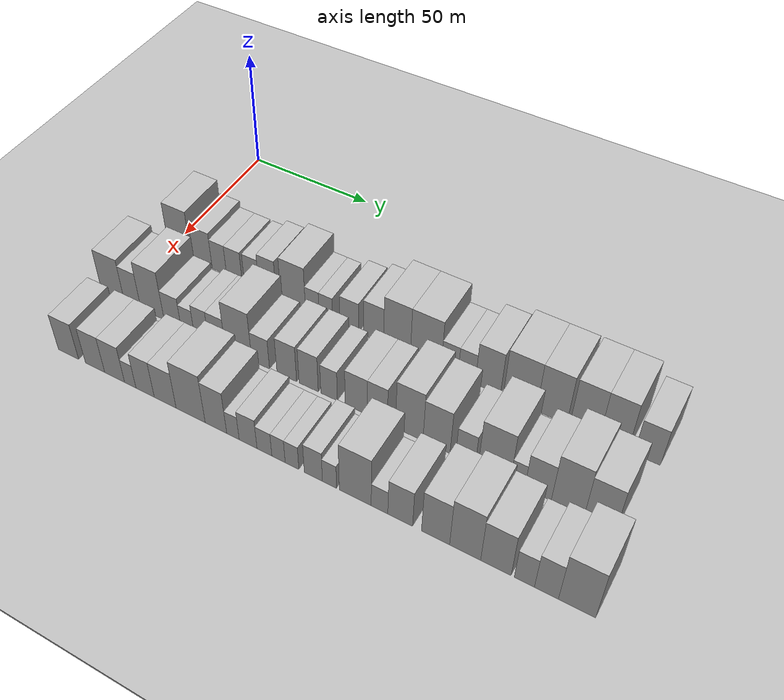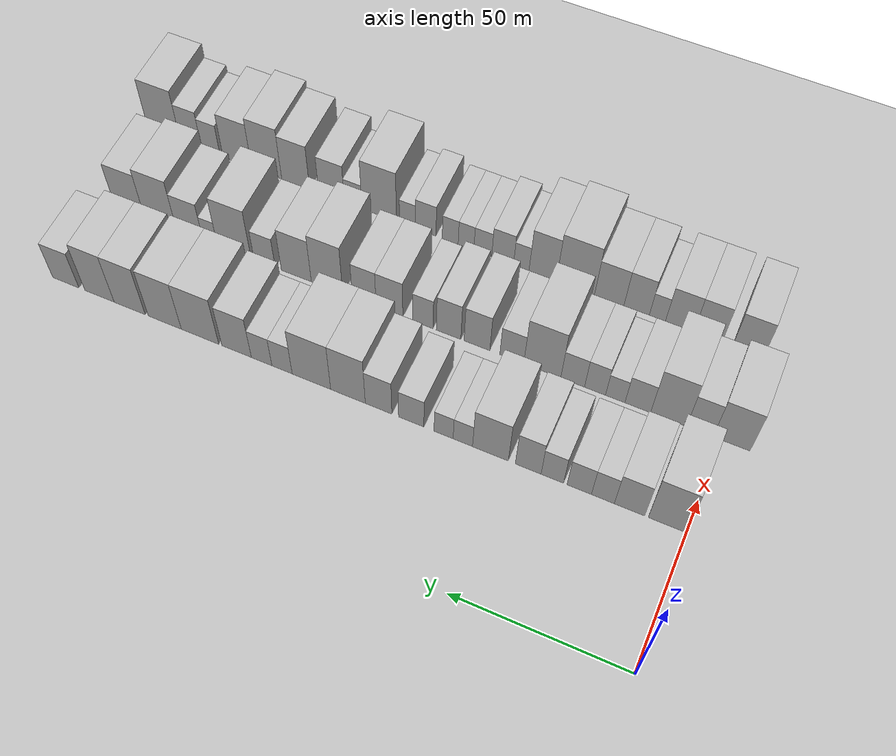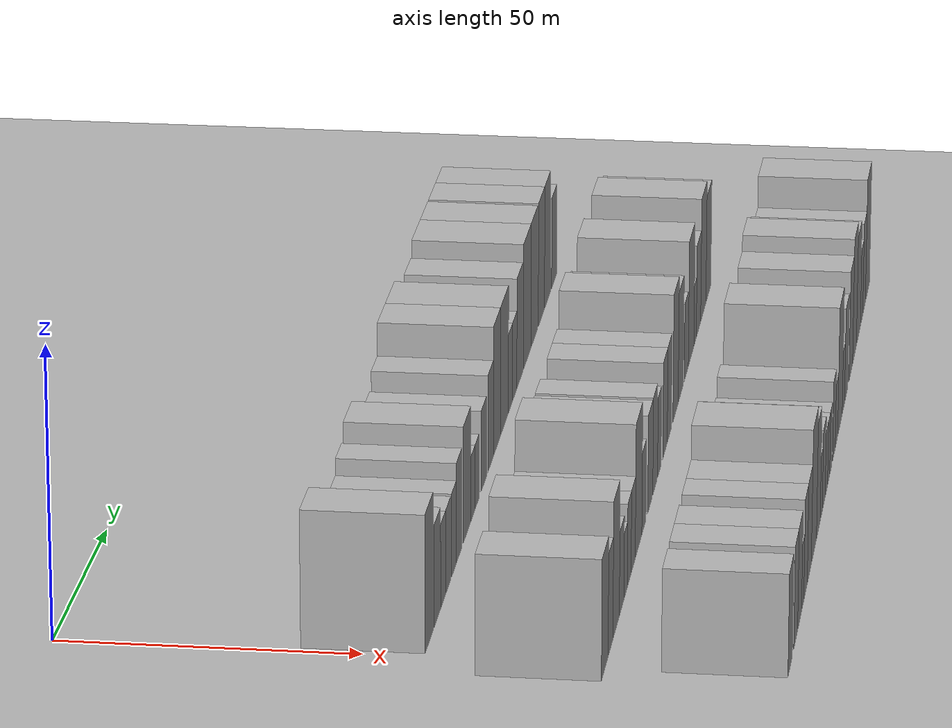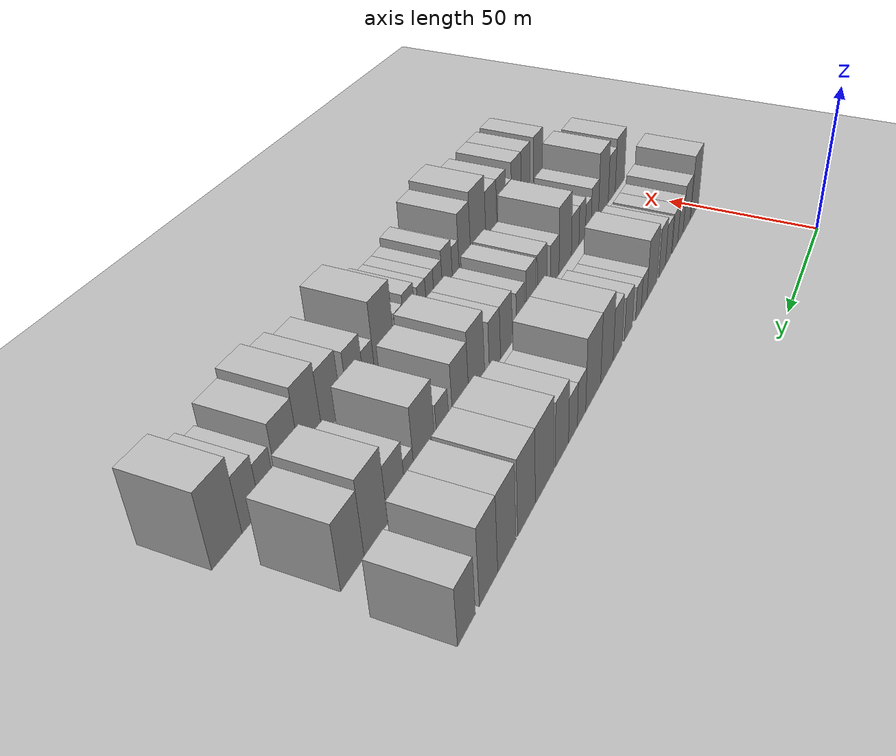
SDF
<sdf version="1.6">
 <world name="default">
  <include><name>ground_plane_1</name><uri>model://HANNAS_ground_plane</uri></include>
  <include>
   <name>ground_plane_2</name>
   <uri>model://HANNAS_ground_plane</uri>
   <pose>100 0 0  0 0 0</pose>
  </include>
  <model name="building_56">
   <static>1</static>
   <pose>50.0000 5.3377 0 0.000000 0.000000 0.000000</pose>
   <link name="link">
    <pose>0 0 12.00 0 0 0</pose>
    <collision name="collision"><geometry><box><size>20.0000 10.2984 24.0000</size></box></geometry></collision>
    <visual name="visual">
     <cast_shadows>0</cast_shadows>
     <geometry><box><size>20.0000 10.2984 24.0000</size></box></geometry>
     <material>
      <script>
       <uri>model://HANNAS_wall/materials/scripts</uri>
       <uri>model://HANNAS_wall/materials/textures</uri>
       <name>vrc/HANNAS_wall</name>
      </script>
     </material>
    </visual>
   </link>
  </model>
  <model name="building_57">
   <static>1</static>
   <pose>50.0000 15.6601 0 0.000000 0.000000 0.000000</pose>
   <link name="link">
    <pose>0 0 9.00 0 0 0</pose>
    <collision name="collision"><geometry><box><size>20.0000 8.3464 18.0000</size></box></geometry></collision>
    <visual name="visual">
     <cast_shadows>0</cast_shadows>
     <geometry><box><size>20.0000 8.3464 18.0000</size></box></geometry>
     <material>
      <script>
       <uri>model://HANNAS_wall/materials/scripts</uri>
       <uri>model://HANNAS_wall/materials/textures</uri>
       <name>vrc/HANNAS_wall</name>
      </script>
     </material>
    </visual>
   </link>
  </model>
  <model name="building_58">
   <static>1</static>
   <pose>50.0000 23.0112 0 0.000000 0.000000 0.000000</pose>
   <link name="link">
    <pose>0 0 7.50 0 0 0</pose>
    <collision name="collision"><geometry><box><size>20.0000 6.3558 15.0000</size></box></geometry></collision>
    <visual name="visual">
     <cast_shadows>0</cast_shadows>
     <geometry><box><size>20.0000 6.3558 15.0000</size></box></geometry>
     <material>
      <script>
       <uri>model://HANNAS_wall/materials/scripts</uri>
       <uri>model://HANNAS_wall/materials/textures</uri>
       <name>vrc/HANNAS_wall</name>
      </script>
     </material>
    </visual>
   </link>
  </model>
  <model name="building_59">
   <static>1</static>
   <pose>50.0000 29.6008 0 0.000000 0.000000 0.000000</pose>
   <link name="link">
    <pose>0 0 7.50 0 0 0</pose>
    <collision name="collision"><geometry><box><size>20.0000 6.8233 15.0000</size></box></geometry></collision>
    <visual name="visual">
     <cast_shadows>0</cast_shadows>
     <geometry><box><size>20.0000 6.8233 15.0000</size></box></geometry>
     <material>
      <script>
       <uri>model://HANNAS_wall/materials/scripts</uri>
       <uri>model://HANNAS_wall/materials/textures</uri>
       <name>vrc/HANNAS_wall</name>
      </script>
     </material>
    </visual>
   </link>
  </model>
  <model name="building_60">
   <static>1</static>
   <pose>50.0000 37.1964 0 0.000000 0.000000 0.000000</pose>
   <link name="link">
    <pose>0 0 7.50 0 0 0</pose>
    <collision name="collision"><geometry><box><size>20.0000 6.3681 15.0000</size></box></geometry></collision>
    <visual name="visual">
     <cast_shadows>0</cast_shadows>
     <geometry><box><size>20.0000 6.3681 15.0000</size></box></geometry>
     <material>
      <script>
       <uri>model://HANNAS_wall/materials/scripts</uri>
       <uri>model://HANNAS_wall/materials/textures</uri>
       <name>vrc/HANNAS_wall</name>
      </script>
     </material>
    </visual>
   </link>
  </model>
  <model name="building_61">
   <static>1</static>
   <pose>50.0000 44.0449 0 0.000000 0.000000 0.000000</pose>
   <link name="link">
    <pose>0 0 9.00 0 0 0</pose>
    <collision name="collision"><geometry><box><size>20.0000 7.3289 18.0000</size></box></geometry></collision>
    <visual name="visual">
     <cast_shadows>0</cast_shadows>
     <geometry><box><size>20.0000 7.3289 18.0000</size></box></geometry>
     <material>
      <script>
       <uri>model://HANNAS_wall/materials/scripts</uri>
       <uri>model://HANNAS_wall/materials/textures</uri>
       <name>vrc/HANNAS_wall</name>
      </script>
     </material>
    </visual>
   </link>
  </model>
  <model name="building_62">
   <static>1</static>
   <pose>50.0000 54.8682 0 0.000000 0.000000 0.000000</pose>
   <link name="link">
    <pose>0 0 10.50 0 0 0</pose>
    <collision name="collision"><geometry><box><size>20.0000 10.3177 21.0000</size></box></geometry></collision>
    <visual name="visual">
     <cast_shadows>0</cast_shadows>
     <geometry><box><size>20.0000 10.3177 21.0000</size></box></geometry>
     <material>
      <script>
       <uri>model://HANNAS_wall/materials/scripts</uri>
       <uri>model://HANNAS_wall/materials/textures</uri>
       <name>vrc/HANNAS_wall</name>
      </script>
     </material>
    </visual>
   </link>
  </model>
  <model name="building_63">
   <static>1</static>
   <pose>50.0000 62.8464 0 0.000000 0.000000 0.000000</pose>
   <link name="link">
    <pose>0 0 6.00 0 0 0</pose>
    <collision name="collision"><geometry><box><size>20.0000 5.6387 12.0000</size></box></geometry></collision>
    <visual name="visual">
     <cast_shadows>0</cast_shadows>
     <geometry><box><size>20.0000 5.6387 12.0000</size></box></geometry>
     <material>
      <script>
       <uri>model://HANNAS_wall/materials/scripts</uri>
       <uri>model://HANNAS_wall/materials/textures</uri>
       <name>vrc/HANNAS_wall</name>
      </script>
     </material>
    </visual>
   </link>
  </model>
  <model name="building_64">
   <static>1</static>
   <pose>50.0000 68.4595 0 0.000000 0.000000 0.000000</pose>
   <link name="link">
    <pose>0 0 6.00 0 0 0</pose>
    <collision name="collision"><geometry><box><size>20.0000 5.5874 12.0000</size></box></geometry></collision>
    <visual name="visual">
     <cast_shadows>0</cast_shadows>
     <geometry><box><size>20.0000 5.5874 12.0000</size></box></geometry>
     <material>
      <script>
       <uri>model://HANNAS_wall/materials/scripts</uri>
       <uri>model://HANNAS_wall/materials/textures</uri>
       <name>vrc/HANNAS_wall</name>
      </script>
     </material>
    </visual>
   </link>
  </model>
  <model name="building_65">
   <static>1</static>
   <pose>50.0000 77.9872 0 0.000000 0.000000 0.000000</pose>
   <link name="link">
    <pose>0 0 7.50 0 0 0</pose>
    <collision name="collision"><geometry><box><size>20.0000 7.4680 15.0000</size></box></geometry></collision>
    <visual name="visual">
     <cast_shadows>0</cast_shadows>
     <geometry><box><size>20.0000 7.4680 15.0000</size></box></geometry>
     <material>
      <script>
       <uri>model://HANNAS_wall/materials/scripts</uri>
       <uri>model://HANNAS_wall/materials/textures</uri>
       <name>vrc/HANNAS_wall</name>
      </script>
     </material>
    </visual>
   </link>
  </model>
  <model name="building_66">
   <static>1</static>
   <pose>50.0000 87.6970 0 0.000000 0.000000 0.000000</pose>
   <link name="link">
    <pose>0 0 9.00 0 0 0</pose>
    <collision name="collision"><geometry><box><size>20.0000 7.9515 18.0000</size></box></geometry></collision>
    <visual name="visual">
     <cast_shadows>0</cast_shadows>
     <geometry><box><size>20.0000 7.9515 18.0000</size></box></geometry>
     <material>
      <script>
       <uri>model://HANNAS_wall/materials/scripts</uri>
       <uri>model://HANNAS_wall/materials/textures</uri>
       <name>vrc/HANNAS_wall</name>
      </script>
     </material>
    </visual>
   </link>
  </model>
  <model name="building_67">
   <static>1</static>
   <pose>50.0000 96.9060 0 0.000000 0.000000 0.000000</pose>
   <link name="link">
    <pose>0 0 12.00 0 0 0</pose>
    <collision name="collision"><geometry><box><size>20.0000 10.4666 24.0000</size></box></geometry></collision>
    <visual name="visual">
     <cast_shadows>0</cast_shadows>
     <geometry><box><size>20.0000 10.4666 24.0000</size></box></geometry>
     <material>
      <script>
       <uri>model://HANNAS_wall/materials/scripts</uri>
       <uri>model://HANNAS_wall/materials/textures</uri>
       <name>vrc/HANNAS_wall</name>
      </script>
     </material>
    </visual>
   </link>
  </model>
  <model name="building_68">
   <static>1</static>
   <pose>50.0000 108.0340 0 0.000000 0.000000 0.000000</pose>
   <link name="link">
    <pose>0 0 12.00 0 0 0</pose>
    <collision name="collision"><geometry><box><size>20.0000 11.7893 24.0000</size></box></geometry></collision>
    <visual name="visual">
     <cast_shadows>0</cast_shadows>
     <geometry><box><size>20.0000 11.7893 24.0000</size></box></geometry>
     <material>
      <script>
       <uri>model://HANNAS_wall/materials/scripts</uri>
       <uri>model://HANNAS_wall/materials/textures</uri>
       <name>vrc/HANNAS_wall</name>
      </script>
     </material>
    </visual>
   </link>
  </model>
  <model name="building_69">
   <static>1</static>
   <pose>50.0000 117.0677 0 0.000000 0.000000 0.000000</pose>
   <link name="link">
    <pose>0 0 7.50 0 0 0</pose>
    <collision name="collision"><geometry><box><size>20.0000 6.2782 15.0000</size></box></geometry></collision>
    <visual name="visual">
     <cast_shadows>0</cast_shadows>
     <geometry><box><size>20.0000 6.2782 15.0000</size></box></geometry>
     <material>
      <script>
       <uri>model://HANNAS_wall/materials/scripts</uri>
       <uri>model://HANNAS_wall/materials/textures</uri>
       <name>vrc/HANNAS_wall</name>
      </script>
     </material>
    </visual>
   </link>
  </model>
  <model name="building_70">
   <static>1</static>
   <pose>50.0000 123.4036 0 0.000000 0.000000 0.000000</pose>
   <link name="link">
    <pose>0 0 7.50 0 0 0</pose>
    <collision name="collision"><geometry><box><size>20.0000 6.3938 15.0000</size></box></geometry></collision>
    <visual name="visual">
     <cast_shadows>0</cast_shadows>
     <geometry><box><size>20.0000 6.3938 15.0000</size></box></geometry>
     <material>
      <script>
       <uri>model://HANNAS_wall/materials/scripts</uri>
       <uri>model://HANNAS_wall/materials/textures</uri>
       <name>vrc/HANNAS_wall</name>
      </script>
     </material>
    </visual>
   </link>
  </model>
  <model name="building_71">
   <static>1</static>
   <pose>50.0000 131.2240 0 0.000000 0.000000 0.000000</pose>
   <link name="link">
    <pose>0 0 10.50 0 0 0</pose>
    <collision name="collision"><geometry><box><size>20.0000 9.2470 21.0000</size></box></geometry></collision>
    <visual name="visual">
     <cast_shadows>0</cast_shadows>
     <geometry><box><size>20.0000 9.2470 21.0000</size></box></geometry>
     <material>
      <script>
       <uri>model://HANNAS_wall/materials/scripts</uri>
       <uri>model://HANNAS_wall/materials/textures</uri>
       <name>vrc/HANNAS_wall</name>
      </script>
     </material>
    </visual>
   </link>
  </model>
  <model name="building_72">
   <static>1</static>
   <pose>50.0000 142.8083 0 0.000000 0.000000 0.000000</pose>
   <link name="link">
    <pose>0 0 12.00 0 0 0</pose>
    <collision name="collision"><geometry><box><size>20.0000 11.9215 24.0000</size></box></geometry></collision>
    <visual name="visual">
     <cast_shadows>0</cast_shadows>
     <geometry><box><size>20.0000 11.9215 24.0000</size></box></geometry>
     <material>
      <script>
       <uri>model://HANNAS_wall/materials/scripts</uri>
       <uri>model://HANNAS_wall/materials/textures</uri>
       <name>vrc/HANNAS_wall</name>
      </script>
     </material>
    </visual>
   </link>
  </model>
  <model name="building_73">
   <static>1</static>
   <pose>50.0000 154.0795 0 0.000000 0.000000 0.000000</pose>
   <link name="link">
    <pose>0 0 12.00 0 0 0</pose>
    <collision name="collision"><geometry><box><size>20.0000 10.6209 24.0000</size></box></geometry></collision>
    <visual name="visual">
     <cast_shadows>0</cast_shadows>
     <geometry><box><size>20.0000 10.6209 24.0000</size></box></geometry>
     <material>
      <script>
       <uri>model://HANNAS_wall/materials/scripts</uri>
       <uri>model://HANNAS_wall/materials/textures</uri>
       <name>vrc/HANNAS_wall</name>
      </script>
     </material>
    </visual>
   </link>
  </model>
  <model name="building_74">
   <static>1</static>
   <pose>50.0000 165.4645 0 0.000000 0.000000 0.000000</pose>
   <link name="link">
    <pose>0 0 12.00 0 0 0</pose>
    <collision name="collision"><geometry><box><size>20.0000 10.1491 24.0000</size></box></geometry></collision>
    <visual name="visual">
     <cast_shadows>0</cast_shadows>
     <geometry><box><size>20.0000 10.1491 24.0000</size></box></geometry>
     <material>
      <script>
       <uri>model://HANNAS_wall/materials/scripts</uri>
       <uri>model://HANNAS_wall/materials/textures</uri>
       <name>vrc/HANNAS_wall</name>
      </script>
     </material>
    </visual>
   </link>
  </model>
  <model name="building_75">
   <static>1</static>
   <pose>50.0000 175.3621 0 0.000000 0.000000 0.000000</pose>
   <link name="link">
    <pose>0 0 12.00 0 0 0</pose>
    <collision name="collision"><geometry><box><size>20.0000 9.6459 24.0000</size></box></geometry></collision>
    <visual name="visual">
     <cast_shadows>0</cast_shadows>
     <geometry><box><size>20.0000 9.6459 24.0000</size></box></geometry>
     <material>
      <script>
       <uri>model://HANNAS_wall/materials/scripts</uri>
       <uri>model://HANNAS_wall/materials/textures</uri>
       <name>vrc/HANNAS_wall</name>
      </script>
     </material>
    </visual>
   </link>
  </model>
  <model name="building_76">
   <static>1</static>
   <pose>50.0000 186.5350 0 0.000000 0.000000 0.000000</pose>
   <link name="link">
    <pose>0 0 9.00 0 0 0</pose>
    <collision name="collision"><geometry><box><size>20.0000 8.7000 18.0000</size></box></geometry></collision>
    <visual name="visual">
     <cast_shadows>0</cast_shadows>
     <geometry><box><size>20.0000 8.7000 18.0000</size></box></geometry>
     <material>
      <script>
       <uri>model://HANNAS_wall/materials/scripts</uri>
       <uri>model://HANNAS_wall/materials/textures</uri>
       <name>vrc/HANNAS_wall</name>
      </script>
     </material>
    </visual>
   </link>
  </model>
  <model name="building_164">
   <static>1</static>
   <pose>79.0000 -2.9536 0 0.000000 0.000000 0.000000</pose>
   <link name="link">
    <pose>0 0 10.50 0 0 0</pose>
    <collision name="collision"><geometry><box><size>20.0000 10.2951 21.0000</size></box></geometry></collision>
    <visual name="visual">
     <cast_shadows>0</cast_shadows>
     <geometry><box><size>20.0000 10.2951 21.0000</size></box></geometry>
     <material>
      <script>
       <uri>model://HANNAS_wall/materials/scripts</uri>
       <uri>model://HANNAS_wall/materials/textures</uri>
       <name>vrc/HANNAS_wall</name>
      </script>
     </material>
    </visual>
   </link>
  </model>
  <model name="building_165">
   <static>1</static>
   <pose>79.0000 5.9318 0 0.000000 0.000000 0.000000</pose>
   <link name="link">
    <pose>0 0 9.00 0 0 0</pose>
    <collision name="collision"><geometry><box><size>20.0000 7.4758 18.0000</size></box></geometry></collision>
    <visual name="visual">
     <cast_shadows>0</cast_shadows>
     <geometry><box><size>20.0000 7.4758 18.0000</size></box></geometry>
     <material>
      <script>
       <uri>model://HANNAS_wall/materials/scripts</uri>
       <uri>model://HANNAS_wall/materials/textures</uri>
       <name>vrc/HANNAS_wall</name>
      </script>
     </material>
    </visual>
   </link>
  </model>
  <model name="building_166">
   <static>1</static>
   <pose>79.0000 14.7659 0 0.000000 0.000000 0.000000</pose>
   <link name="link">
    <pose>0 0 12.00 0 0 0</pose>
    <collision name="collision"><geometry><box><size>20.0000 10.1925 24.0000</size></box></geometry></collision>
    <visual name="visual">
     <cast_shadows>0</cast_shadows>
     <geometry><box><size>20.0000 10.1925 24.0000</size></box></geometry>
     <material>
      <script>
       <uri>model://HANNAS_wall/materials/scripts</uri>
       <uri>model://HANNAS_wall/materials/textures</uri>
       <name>vrc/HANNAS_wall</name>
      </script>
     </material>
    </visual>
   </link>
  </model>
  <model name="building_167">
   <static>1</static>
   <pose>79.0000 23.5472 0 0.000000 0.000000 0.000000</pose>
   <link name="link">
    <pose>0 0 7.50 0 0 0</pose>
    <collision name="collision"><geometry><box><size>20.0000 7.3701 15.0000</size></box></geometry></collision>
    <visual name="visual">
     <cast_shadows>0</cast_shadows>
     <geometry><box><size>20.0000 7.3701 15.0000</size></box></geometry>
     <material>
      <script>
       <uri>model://HANNAS_wall/materials/scripts</uri>
       <uri>model://HANNAS_wall/materials/textures</uri>
       <name>vrc/HANNAS_wall</name>
      </script>
     </material>
    </visual>
   </link>
  </model>
  <model name="building_168">
   <static>1</static>
   <pose>79.0000 30.0317 0 0.000000 0.000000 0.000000</pose>
   <link name="link">
    <pose>0 0 6.00 0 0 0</pose>
    <collision name="collision"><geometry><box><size>20.0000 5.5988 12.0000</size></box></geometry></collision>
    <visual name="visual">
     <cast_shadows>0</cast_shadows>
     <geometry><box><size>20.0000 5.5988 12.0000</size></box></geometry>
     <material>
      <script>
       <uri>model://HANNAS_wall/materials/scripts</uri>
       <uri>model://HANNAS_wall/materials/textures</uri>
       <name>vrc/HANNAS_wall</name>
      </script>
     </material>
    </visual>
   </link>
  </model>
  <model name="building_169">
   <static>1</static>
   <pose>79.0000 35.8856 0 0.000000 0.000000 0.000000</pose>
   <link name="link">
    <pose>0 0 7.50 0 0 0</pose>
    <collision name="collision"><geometry><box><size>20.0000 6.1090 15.0000</size></box></geometry></collision>
    <visual name="visual">
     <cast_shadows>0</cast_shadows>
     <geometry><box><size>20.0000 6.1090 15.0000</size></box></geometry>
     <material>
      <script>
       <uri>model://HANNAS_wall/materials/scripts</uri>
       <uri>model://HANNAS_wall/materials/textures</uri>
       <name>vrc/HANNAS_wall</name>
      </script>
     </material>
    </visual>
   </link>
  </model>
  <model name="building_170">
   <static>1</static>
   <pose>79.0000 42.4208 0 0.000000 0.000000 0.000000</pose>
   <link name="link">
    <pose>0 0 7.50 0 0 0</pose>
    <collision name="collision"><geometry><box><size>20.0000 6.9614 15.0000</size></box></geometry></collision>
    <visual name="visual">
     <cast_shadows>0</cast_shadows>
     <geometry><box><size>20.0000 6.9614 15.0000</size></box></geometry>
     <material>
      <script>
       <uri>model://HANNAS_wall/materials/scripts</uri>
       <uri>model://HANNAS_wall/materials/textures</uri>
       <name>vrc/HANNAS_wall</name>
      </script>
     </material>
    </visual>
   </link>
  </model>
  <model name="building_171">
   <static>1</static>
   <pose>79.0000 51.3883 0 0.000000 0.000000 0.000000</pose>
   <link name="link">
    <pose>0 0 12.00 0 0 0</pose>
    <collision name="collision"><geometry><box><size>20.0000 10.9735 24.0000</size></box></geometry></collision>
    <visual name="visual">
     <cast_shadows>0</cast_shadows>
     <geometry><box><size>20.0000 10.9735 24.0000</size></box></geometry>
     <material>
      <script>
       <uri>model://HANNAS_wall/materials/scripts</uri>
       <uri>model://HANNAS_wall/materials/textures</uri>
       <name>vrc/HANNAS_wall</name>
      </script>
     </material>
    </visual>
   </link>
  </model>
  <model name="building_172">
   <static>1</static>
   <pose>79.0000 60.4503 0 0.000000 0.000000 0.000000</pose>
   <link name="link">
    <pose>0 0 7.50 0 0 0</pose>
    <collision name="collision"><geometry><box><size>20.0000 7.1504 15.0000</size></box></geometry></collision>
    <visual name="visual">
     <cast_shadows>0</cast_shadows>
     <geometry><box><size>20.0000 7.1504 15.0000</size></box></geometry>
     <material>
      <script>
       <uri>model://HANNAS_wall/materials/scripts</uri>
       <uri>model://HANNAS_wall/materials/textures</uri>
       <name>vrc/HANNAS_wall</name>
      </script>
     </material>
    </visual>
   </link>
  </model>
  <model name="building_173">
   <static>1</static>
   <pose>79.0000 70.9192 0 0.000000 0.000000 0.000000</pose>
   <link name="link">
    <pose>0 0 9.00 0 0 0</pose>
    <collision name="collision"><geometry><box><size>20.0000 7.7874 18.0000</size></box></geometry></collision>
    <visual name="visual">
     <cast_shadows>0</cast_shadows>
     <geometry><box><size>20.0000 7.7874 18.0000</size></box></geometry>
     <material>
      <script>
       <uri>model://HANNAS_wall/materials/scripts</uri>
       <uri>model://HANNAS_wall/materials/textures</uri>
       <name>vrc/HANNAS_wall</name>
      </script>
     </material>
    </visual>
   </link>
  </model>
  <model name="building_174">
   <static>1</static>
   <pose>79.0000 79.5469 0 0.000000 0.000000 0.000000</pose>
   <link name="link">
    <pose>0 0 9.00 0 0 0</pose>
    <collision name="collision"><geometry><box><size>20.0000 7.4681 18.0000</size></box></geometry></collision>
    <visual name="visual">
     <cast_shadows>0</cast_shadows>
     <geometry><box><size>20.0000 7.4681 18.0000</size></box></geometry>
     <material>
      <script>
       <uri>model://HANNAS_wall/materials/scripts</uri>
       <uri>model://HANNAS_wall/materials/textures</uri>
       <name>vrc/HANNAS_wall</name>
      </script>
     </material>
    </visual>
   </link>
  </model>
  <model name="building_175">
   <static>1</static>
   <pose>79.0000 87.4397 0 0.000000 0.000000 0.000000</pose>
   <link name="link">
    <pose>0 0 7.50 0 0 0</pose>
    <collision name="collision"><geometry><box><size>20.0000 6.3174 15.0000</size></box></geometry></collision>
    <visual name="visual">
     <cast_shadows>0</cast_shadows>
     <geometry><box><size>20.0000 6.3174 15.0000</size></box></geometry>
     <material>
      <script>
       <uri>model://HANNAS_wall/materials/scripts</uri>
       <uri>model://HANNAS_wall/materials/textures</uri>
       <name>vrc/HANNAS_wall</name>
      </script>
     </material>
    </visual>
   </link>
  </model>
  <model name="building_176">
   <static>1</static>
   <pose>79.0000 97.7559 0 0.000000 0.000000 0.000000</pose>
   <link name="link">
    <pose>0 0 9.00 0 0 0</pose>
    <collision name="collision"><geometry><box><size>20.0000 8.3151 18.0000</size></box></geometry></collision>
    <visual name="visual">
     <cast_shadows>0</cast_shadows>
     <geometry><box><size>20.0000 8.3151 18.0000</size></box></geometry>
     <material>
      <script>
       <uri>model://HANNAS_wall/materials/scripts</uri>
       <uri>model://HANNAS_wall/materials/textures</uri>
       <name>vrc/HANNAS_wall</name>
      </script>
     </material>
    </visual>
   </link>
  </model>
  <model name="building_177">
   <static>1</static>
   <pose>79.0000 105.6463 0 0.000000 0.000000 0.000000</pose>
   <link name="link">
    <pose>0 0 9.00 0 0 0</pose>
    <collision name="collision"><geometry><box><size>20.0000 7.4658 18.0000</size></box></geometry></collision>
    <visual name="visual">
     <cast_shadows>0</cast_shadows>
     <geometry><box><size>20.0000 7.4658 18.0000</size></box></geometry>
     <material>
      <script>
       <uri>model://HANNAS_wall/materials/scripts</uri>
       <uri>model://HANNAS_wall/materials/textures</uri>
       <name>vrc/HANNAS_wall</name>
      </script>
     </material>
    </visual>
   </link>
  </model>
  <model name="building_178">
   <static>1</static>
   <pose>79.0000 117.3897 0 0.000000 0.000000 0.000000</pose>
   <link name="link">
    <pose>0 0 12.00 0 0 0</pose>
    <collision name="collision"><geometry><box><size>20.0000 10.0209 24.0000</size></box></geometry></collision>
    <visual name="visual">
     <cast_shadows>0</cast_shadows>
     <geometry><box><size>20.0000 10.0209 24.0000</size></box></geometry>
     <material>
      <script>
       <uri>model://HANNAS_wall/materials/scripts</uri>
       <uri>model://HANNAS_wall/materials/textures</uri>
       <name>vrc/HANNAS_wall</name>
      </script>
     </material>
    </visual>
   </link>
  </model>
  <model name="building_179">
   <static>1</static>
   <pose>79.0000 127.2166 0 0.000000 0.000000 0.000000</pose>
   <link name="link">
    <pose>0 0 10.50 0 0 0</pose>
    <collision name="collision"><geometry><box><size>20.0000 9.6329 21.0000</size></box></geometry></collision>
    <visual name="visual">
     <cast_shadows>0</cast_shadows>
     <geometry><box><size>20.0000 9.6329 21.0000</size></box></geometry>
     <material>
      <script>
       <uri>model://HANNAS_wall/materials/scripts</uri>
       <uri>model://HANNAS_wall/materials/textures</uri>
       <name>vrc/HANNAS_wall</name>
      </script>
     </material>
    </visual>
   </link>
  </model>
  <model name="building_180">
   <static>1</static>
   <pose>79.0000 137.4561 0 0.000000 0.000000 0.000000</pose>
   <link name="link">
    <pose>0 0 7.50 0 0 0</pose>
    <collision name="collision"><geometry><box><size>20.0000 6.8461 15.0000</size></box></geometry></collision>
    <visual name="visual">
     <cast_shadows>0</cast_shadows>
     <geometry><box><size>20.0000 6.8461 15.0000</size></box></geometry>
     <material>
      <script>
       <uri>model://HANNAS_wall/materials/scripts</uri>
       <uri>model://HANNAS_wall/materials/textures</uri>
       <name>vrc/HANNAS_wall</name>
      </script>
     </material>
    </visual>
   </link>
  </model>
  <model name="building_181">
   <static>1</static>
   <pose>79.0000 147.3901 0 0.000000 0.000000 0.000000</pose>
   <link name="link">
    <pose>0 0 12.00 0 0 0</pose>
    <collision name="collision"><geometry><box><size>20.0000 11.0218 24.0000</size></box></geometry></collision>
    <visual name="visual">
     <cast_shadows>0</cast_shadows>
     <geometry><box><size>20.0000 11.0218 24.0000</size></box></geometry>
     <material>
      <script>
       <uri>model://HANNAS_wall/materials/scripts</uri>
       <uri>model://HANNAS_wall/materials/textures</uri>
       <name>vrc/HANNAS_wall</name>
      </script>
     </material>
    </visual>
   </link>
  </model>
  <model name="building_182">
   <static>1</static>
   <pose>79.0000 155.3164 0 0.000000 0.000000 0.000000</pose>
   <link name="link">
    <pose>0 0 6.00 0 0 0</pose>
    <collision name="collision"><geometry><box><size>20.0000 4.8308 12.0000</size></box></geometry></collision>
    <visual name="visual">
     <cast_shadows>0</cast_shadows>
     <geometry><box><size>20.0000 4.8308 12.0000</size></box></geometry>
     <material>
      <script>
       <uri>model://HANNAS_wall/materials/scripts</uri>
       <uri>model://HANNAS_wall/materials/textures</uri>
       <name>vrc/HANNAS_wall</name>
      </script>
     </material>
    </visual>
   </link>
  </model>
  <model name="building_183">
   <static>1</static>
   <pose>79.0000 162.1378 0 0.000000 0.000000 0.000000</pose>
   <link name="link">
    <pose>0 0 9.00 0 0 0</pose>
    <collision name="collision"><geometry><box><size>20.0000 8.8120 18.0000</size></box></geometry></collision>
    <visual name="visual">
     <cast_shadows>0</cast_shadows>
     <geometry><box><size>20.0000 8.8120 18.0000</size></box></geometry>
     <material>
      <script>
       <uri>model://HANNAS_wall/materials/scripts</uri>
       <uri>model://HANNAS_wall/materials/textures</uri>
       <name>vrc/HANNAS_wall</name>
      </script>
     </material>
    </visual>
   </link>
  </model>
  <model name="building_184">
   <static>1</static>
   <pose>79.0000 171.9306 0 0.000000 0.000000 0.000000</pose>
   <link name="link">
    <pose>0 0 12.00 0 0 0</pose>
    <collision name="collision"><geometry><box><size>20.0000 10.7736 24.0000</size></box></geometry></collision>
    <visual name="visual">
     <cast_shadows>0</cast_shadows>
     <geometry><box><size>20.0000 10.7736 24.0000</size></box></geometry>
     <material>
      <script>
       <uri>model://HANNAS_wall/materials/scripts</uri>
       <uri>model://HANNAS_wall/materials/textures</uri>
       <name>vrc/HANNAS_wall</name>
      </script>
     </material>
    </visual>
   </link>
  </model>
  <model name="building_185">
   <static>1</static>
   <pose>79.0000 182.3930 0 0.000000 0.000000 0.000000</pose>
   <link name="link">
    <pose>0 0 10.50 0 0 0</pose>
    <collision name="collision"><geometry><box><size>20.0000 10.1513 21.0000</size></box></geometry></collision>
    <visual name="visual">
     <cast_shadows>0</cast_shadows>
     <geometry><box><size>20.0000 10.1513 21.0000</size></box></geometry>
     <material>
      <script>
       <uri>model://HANNAS_wall/materials/scripts</uri>
       <uri>model://HANNAS_wall/materials/textures</uri>
       <name>vrc/HANNAS_wall</name>
      </script>
     </material>
    </visual>
   </link>
  </model>
  <model name="building_278">
   <static>1</static>
   <pose>108.0000 1.2918 0 0.000000 0.000000 0.000000</pose>
   <link name="link">
    <pose>0 0 9.00 0 0 0</pose>
    <collision name="collision"><geometry><box><size>20.0000 8.9008 18.0000</size></box></geometry></collision>
    <visual name="visual">
     <cast_shadows>0</cast_shadows>
     <geometry><box><size>20.0000 8.9008 18.0000</size></box></geometry>
     <material>
      <script>
       <uri>model://HANNAS_wall/materials/scripts</uri>
       <uri>model://HANNAS_wall/materials/textures</uri>
       <name>vrc/HANNAS_wall</name>
      </script>
     </material>
    </visual>
   </link>
  </model>
  <model name="building_279">
   <static>1</static>
   <pose>108.0000 12.8833 0 0.000000 0.000000 0.000000</pose>
   <link name="link">
    <pose>0 0 9.00 0 0 0</pose>
    <collision name="collision"><geometry><box><size>20.0000 8.2822 18.0000</size></box></geometry></collision>
    <visual name="visual">
     <cast_shadows>0</cast_shadows>
     <geometry><box><size>20.0000 8.2822 18.0000</size></box></geometry>
     <material>
      <script>
       <uri>model://HANNAS_wall/materials/scripts</uri>
       <uri>model://HANNAS_wall/materials/textures</uri>
       <name>vrc/HANNAS_wall</name>
      </script>
     </material>
    </visual>
   </link>
  </model>
  <model name="building_280">
   <static>1</static>
   <pose>108.0000 21.2233 0 0.000000 0.000000 0.000000</pose>
   <link name="link">
    <pose>0 0 9.00 0 0 0</pose>
    <collision name="collision"><geometry><box><size>20.0000 8.3977 18.0000</size></box></geometry></collision>
    <visual name="visual">
     <cast_shadows>0</cast_shadows>
     <geometry><box><size>20.0000 8.3977 18.0000</size></box></geometry>
     <material>
      <script>
       <uri>model://HANNAS_wall/materials/scripts</uri>
       <uri>model://HANNAS_wall/materials/textures</uri>
       <name>vrc/HANNAS_wall</name>
      </script>
     </material>
    </visual>
   </link>
  </model>
  <model name="building_281">
   <static>1</static>
   <pose>108.0000 27.8239 0 0.000000 0.000000 0.000000</pose>
   <link name="link">
    <pose>0 0 6.00 0 0 0</pose>
    <collision name="collision"><geometry><box><size>20.0000 4.8034 12.0000</size></box></geometry></collision>
    <visual name="visual">
     <cast_shadows>0</cast_shadows>
     <geometry><box><size>20.0000 4.8034 12.0000</size></box></geometry>
     <material>
      <script>
       <uri>model://HANNAS_wall/materials/scripts</uri>
       <uri>model://HANNAS_wall/materials/textures</uri>
       <name>vrc/HANNAS_wall</name>
      </script>
     </material>
    </visual>
   </link>
  </model>
  <model name="building_282">
   <static>1</static>
   <pose>108.0000 34.0254 0 0.000000 0.000000 0.000000</pose>
   <link name="link">
    <pose>0 0 9.00 0 0 0</pose>
    <collision name="collision"><geometry><box><size>20.0000 7.5995 18.0000</size></box></geometry></collision>
    <visual name="visual">
     <cast_shadows>0</cast_shadows>
     <geometry><box><size>20.0000 7.5995 18.0000</size></box></geometry>
     <material>
      <script>
       <uri>model://HANNAS_wall/materials/scripts</uri>
       <uri>model://HANNAS_wall/materials/textures</uri>
       <name>vrc/HANNAS_wall</name>
      </script>
     </material>
    </visual>
   </link>
  </model>
  <model name="building_283">
   <static>1</static>
   <pose>108.0000 42.2703 0 0.000000 0.000000 0.000000</pose>
   <link name="link">
    <pose>0 0 9.00 0 0 0</pose>
    <collision name="collision"><geometry><box><size>20.0000 8.8905 18.0000</size></box></geometry></collision>
    <visual name="visual">
     <cast_shadows>0</cast_shadows>
     <geometry><box><size>20.0000 8.8905 18.0000</size></box></geometry>
     <material>
      <script>
       <uri>model://HANNAS_wall/materials/scripts</uri>
       <uri>model://HANNAS_wall/materials/textures</uri>
       <name>vrc/HANNAS_wall</name>
      </script>
     </material>
    </visual>
   </link>
  </model>
  <model name="building_284">
   <static>1</static>
   <pose>108.0000 52.5350 0 0.000000 0.000000 0.000000</pose>
   <link name="link">
    <pose>0 0 12.00 0 0 0</pose>
    <collision name="collision"><geometry><box><size>20.0000 11.6388 24.0000</size></box></geometry></collision>
    <visual name="visual">
     <cast_shadows>0</cast_shadows>
     <geometry><box><size>20.0000 11.6388 24.0000</size></box></geometry>
     <material>
      <script>
       <uri>model://HANNAS_wall/materials/scripts</uri>
       <uri>model://HANNAS_wall/materials/textures</uri>
       <name>vrc/HANNAS_wall</name>
      </script>
     </material>
    </visual>
   </link>
  </model>
  <model name="building_285">
   <static>1</static>
   <pose>108.0000 62.5821 0 0.000000 0.000000 0.000000</pose>
   <link name="link">
    <pose>0 0 10.50 0 0 0</pose>
    <collision name="collision"><geometry><box><size>20.0000 8.4555 21.0000</size></box></geometry></collision>
    <visual name="visual">
     <cast_shadows>0</cast_shadows>
     <geometry><box><size>20.0000 8.4555 21.0000</size></box></geometry>
     <material>
      <script>
       <uri>model://HANNAS_wall/materials/scripts</uri>
       <uri>model://HANNAS_wall/materials/textures</uri>
       <name>vrc/HANNAS_wall</name>
      </script>
     </material>
    </visual>
   </link>
  </model>
  <model name="building_286">
   <static>1</static>
   <pose>108.0000 69.2173 0 0.000000 0.000000 0.000000</pose>
   <link name="link">
    <pose>0 0 6.00 0 0 0</pose>
    <collision name="collision"><geometry><box><size>20.0000 4.8148 12.0000</size></box></geometry></collision>
    <visual name="visual">
     <cast_shadows>0</cast_shadows>
     <geometry><box><size>20.0000 4.8148 12.0000</size></box></geometry>
     <material>
      <script>
       <uri>model://HANNAS_wall/materials/scripts</uri>
       <uri>model://HANNAS_wall/materials/textures</uri>
       <name>vrc/HANNAS_wall</name>
      </script>
     </material>
    </visual>
   </link>
  </model>
  <model name="building_287">
   <static>1</static>
   <pose>108.0000 75.0352 0 0.000000 0.000000 0.000000</pose>
   <link name="link">
    <pose>0 0 7.50 0 0 0</pose>
    <collision name="collision"><geometry><box><size>20.0000 6.8211 15.0000</size></box></geometry></collision>
    <visual name="visual">
     <cast_shadows>0</cast_shadows>
     <geometry><box><size>20.0000 6.8211 15.0000</size></box></geometry>
     <material>
      <script>
       <uri>model://HANNAS_wall/materials/scripts</uri>
       <uri>model://HANNAS_wall/materials/textures</uri>
       <name>vrc/HANNAS_wall</name>
      </script>
     </material>
    </visual>
   </link>
  </model>
  <model name="building_288">
   <static>1</static>
   <pose>108.0000 81.2509 0 0.000000 0.000000 0.000000</pose>
   <link name="link">
    <pose>0 0 6.00 0 0 0</pose>
    <collision name="collision"><geometry><box><size>20.0000 5.6101 12.0000</size></box></geometry></collision>
    <visual name="visual">
     <cast_shadows>0</cast_shadows>
     <geometry><box><size>20.0000 5.6101 12.0000</size></box></geometry>
     <material>
      <script>
       <uri>model://HANNAS_wall/materials/scripts</uri>
       <uri>model://HANNAS_wall/materials/textures</uri>
       <name>vrc/HANNAS_wall</name>
      </script>
     </material>
    </visual>
   </link>
  </model>
  <model name="building_289">
   <static>1</static>
   <pose>108.0000 86.5402 0 0.000000 0.000000 0.000000</pose>
   <link name="link">
    <pose>0 0 6.00 0 0 0</pose>
    <collision name="collision"><geometry><box><size>20.0000 4.9685 12.0000</size></box></geometry></collision>
    <visual name="visual">
     <cast_shadows>0</cast_shadows>
     <geometry><box><size>20.0000 4.9685 12.0000</size></box></geometry>
     <material>
      <script>
       <uri>model://HANNAS_wall/materials/scripts</uri>
       <uri>model://HANNAS_wall/materials/textures</uri>
       <name>vrc/HANNAS_wall</name>
      </script>
     </material>
    </visual>
   </link>
  </model>
  <model name="building_290">
   <static>1</static>
   <pose>108.0000 91.5562 0 0.000000 0.000000 0.000000</pose>
   <link name="link">
    <pose>0 0 6.00 0 0 0</pose>
    <collision name="collision"><geometry><box><size>20.0000 5.0635 12.0000</size></box></geometry></collision>
    <visual name="visual">
     <cast_shadows>0</cast_shadows>
     <geometry><box><size>20.0000 5.0635 12.0000</size></box></geometry>
     <material>
      <script>
       <uri>model://HANNAS_wall/materials/scripts</uri>
       <uri>model://HANNAS_wall/materials/textures</uri>
       <name>vrc/HANNAS_wall</name>
      </script>
     </material>
    </visual>
   </link>
  </model>
  <model name="building_291">
   <static>1</static>
   <pose>108.0000 99.3912 0 0.000000 0.000000 0.000000</pose>
   <link name="link">
    <pose>0 0 7.50 0 0 0</pose>
    <collision name="collision"><geometry><box><size>20.0000 6.6064 15.0000</size></box></geometry></collision>
    <visual name="visual">
     <cast_shadows>0</cast_shadows>
     <geometry><box><size>20.0000 6.6064 15.0000</size></box></geometry>
     <material>
      <script>
       <uri>model://HANNAS_wall/materials/scripts</uri>
       <uri>model://HANNAS_wall/materials/textures</uri>
       <name>vrc/HANNAS_wall</name>
      </script>
     </material>
    </visual>
   </link>
  </model>
  <model name="building_292">
   <static>1</static>
   <pose>108.0000 105.2369 0 0.000000 0.000000 0.000000</pose>
   <link name="link">
    <pose>0 0 6.00 0 0 0</pose>
    <collision name="collision"><geometry><box><size>20.0000 5.0850 12.0000</size></box></geometry></collision>
    <visual name="visual">
     <cast_shadows>0</cast_shadows>
     <geometry><box><size>20.0000 5.0850 12.0000</size></box></geometry>
     <material>
      <script>
       <uri>model://HANNAS_wall/materials/scripts</uri>
       <uri>model://HANNAS_wall/materials/textures</uri>
       <name>vrc/HANNAS_wall</name>
      </script>
     </material>
    </visual>
   </link>
  </model>
  <model name="building_293">
   <static>1</static>
   <pose>108.0000 114.4026 0 0.000000 0.000000 0.000000</pose>
   <link name="link">
    <pose>0 0 12.00 0 0 0</pose>
    <collision name="collision"><geometry><box><size>20.0000 11.2464 24.0000</size></box></geometry></collision>
    <visual name="visual">
     <cast_shadows>0</cast_shadows>
     <geometry><box><size>20.0000 11.2464 24.0000</size></box></geometry>
     <material>
      <script>
       <uri>model://HANNAS_wall/materials/scripts</uri>
       <uri>model://HANNAS_wall/materials/textures</uri>
       <name>vrc/HANNAS_wall</name>
      </script>
     </material>
    </visual>
   </link>
  </model>
  <model name="building_294">
   <static>1</static>
   <pose>108.0000 122.9196 0 0.000000 0.000000 0.000000</pose>
   <link name="link">
    <pose>0 0 6.00 0 0 0</pose>
    <collision name="collision"><geometry><box><size>20.0000 5.7877 12.0000</size></box></geometry></collision>
    <visual name="visual">
     <cast_shadows>0</cast_shadows>
     <geometry><box><size>20.0000 5.7877 12.0000</size></box></geometry>
     <material>
      <script>
       <uri>model://HANNAS_wall/materials/scripts</uri>
       <uri>model://HANNAS_wall/materials/textures</uri>
       <name>vrc/HANNAS_wall</name>
      </script>
     </material>
    </visual>
   </link>
  </model>
  <model name="building_295">
   <static>1</static>
   <pose>108.0000 130.0580 0 0.000000 0.000000 0.000000</pose>
   <link name="link">
    <pose>0 0 9.00 0 0 0</pose>
    <collision name="collision"><geometry><box><size>20.0000 8.4890 18.0000</size></box></geometry></collision>
    <visual name="visual">
     <cast_shadows>0</cast_shadows>
     <geometry><box><size>20.0000 8.4890 18.0000</size></box></geometry>
     <material>
      <script>
       <uri>model://HANNAS_wall/materials/scripts</uri>
       <uri>model://HANNAS_wall/materials/textures</uri>
       <name>vrc/HANNAS_wall</name>
      </script>
     </material>
    </visual>
   </link>
  </model>
  <model name="building_296">
   <static>1</static>
   <pose>108.0000 141.9940 0 0.000000 0.000000 0.000000</pose>
   <link name="link">
    <pose>0 0 10.50 0 0 0</pose>
    <collision name="collision"><geometry><box><size>20.0000 9.3831 21.0000</size></box></geometry></collision>
    <visual name="visual">
     <cast_shadows>0</cast_shadows>
     <geometry><box><size>20.0000 9.3831 21.0000</size></box></geometry>
     <material>
      <script>
       <uri>model://HANNAS_wall/materials/scripts</uri>
       <uri>model://HANNAS_wall/materials/textures</uri>
       <name>vrc/HANNAS_wall</name>
      </script>
     </material>
    </visual>
   </link>
  </model>
  <model name="building_297">
   <static>1</static>
   <pose>108.0000 151.7623 0 0.000000 0.000000 0.000000</pose>
   <link name="link">
    <pose>0 0 12.00 0 0 0</pose>
    <collision name="collision"><geometry><box><size>20.0000 10.1534 24.0000</size></box></geometry></collision>
    <visual name="visual">
     <cast_shadows>0</cast_shadows>
     <geometry><box><size>20.0000 10.1534 24.0000</size></box></geometry>
     <material>
      <script>
       <uri>model://HANNAS_wall/materials/scripts</uri>
       <uri>model://HANNAS_wall/materials/textures</uri>
       <name>vrc/HANNAS_wall</name>
      </script>
     </material>
    </visual>
   </link>
  </model>
  <model name="building_298">
   <static>1</static>
   <pose>108.0000 161.7187 0 0.000000 0.000000 0.000000</pose>
   <link name="link">
    <pose>0 0 10.50 0 0 0</pose>
    <collision name="collision"><geometry><box><size>20.0000 9.7595 21.0000</size></box></geometry></collision>
    <visual name="visual">
     <cast_shadows>0</cast_shadows>
     <geometry><box><size>20.0000 9.7595 21.0000</size></box></geometry>
     <material>
      <script>
       <uri>model://HANNAS_wall/materials/scripts</uri>
       <uri>model://HANNAS_wall/materials/textures</uri>
       <name>vrc/HANNAS_wall</name>
      </script>
     </material>
    </visual>
   </link>
  </model>
  <model name="building_299">
   <static>1</static>
   <pose>108.0000 170.7561 0 0.000000 0.000000 0.000000</pose>
   <link name="link">
    <pose>0 0 7.50 0 0 0</pose>
    <collision name="collision"><geometry><box><size>20.0000 6.3153 15.0000</size></box></geometry></collision>
    <visual name="visual">
     <cast_shadows>0</cast_shadows>
     <geometry><box><size>20.0000 6.3153 15.0000</size></box></geometry>
     <material>
      <script>
       <uri>model://HANNAS_wall/materials/scripts</uri>
       <uri>model://HANNAS_wall/materials/textures</uri>
       <name>vrc/HANNAS_wall</name>
      </script>
     </material>
    </visual>
   </link>
  </model>
  <model name="building_300">
   <static>1</static>
   <pose>108.0000 177.6288 0 0.000000 0.000000 0.000000</pose>
   <link name="link">
    <pose>0 0 9.00 0 0 0</pose>
    <collision name="collision"><geometry><box><size>20.0000 7.4300 18.0000</size></box></geometry></collision>
    <visual name="visual">
     <cast_shadows>0</cast_shadows>
     <geometry><box><size>20.0000 7.4300 18.0000</size></box></geometry>
     <material>
      <script>
       <uri>model://HANNAS_wall/materials/scripts</uri>
       <uri>model://HANNAS_wall/materials/textures</uri>
       <name>vrc/HANNAS_wall</name>
      </script>
     </material>
    </visual>
   </link>
  </model>
  <model name="building_301">
   <static>1</static>
   <pose>108.0000 186.9994 0 0.000000 0.000000 0.000000</pose>
   <link name="link">
    <pose>0 0 12.00 0 0 0</pose>
    <collision name="collision"><geometry><box><size>20.0000 11.3113 24.0000</size></box></geometry></collision>
    <visual name="visual">
     <cast_shadows>0</cast_shadows>
     <geometry><box><size>20.0000 11.3113 24.0000</size></box></geometry>
     <material>
      <script>
       <uri>model://HANNAS_wall/materials/scripts</uri>
       <uri>model://HANNAS_wall/materials/textures</uri>
       <name>vrc/HANNAS_wall</name>
      </script>
     </material>
    </visual>
   </link>
  </model>
 </world>
</sdf>
